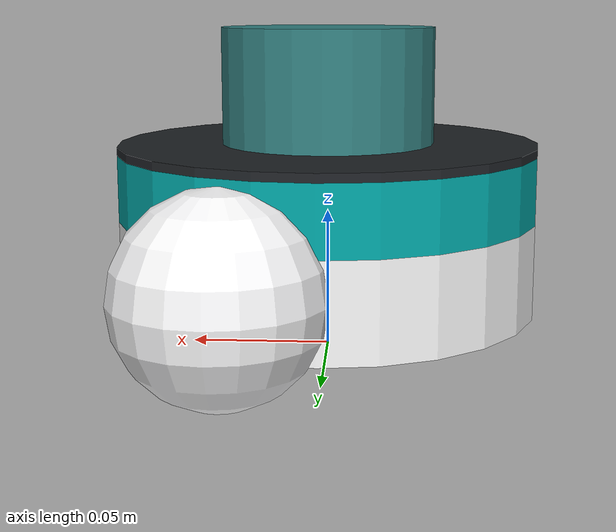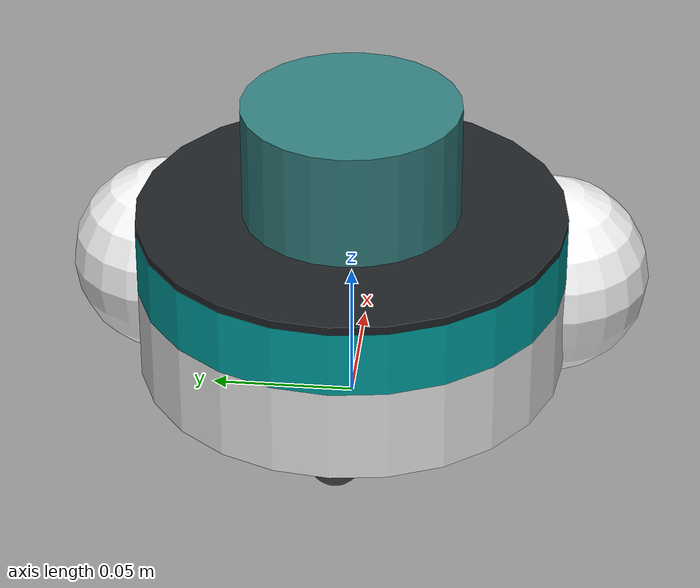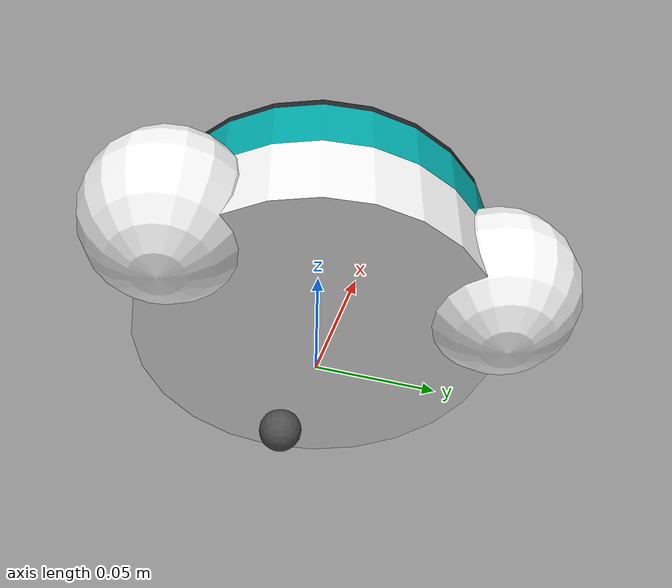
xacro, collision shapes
<?xml version="1.0" ?>
<robot name="gizmo" xmlns:xacro="http://www.ros.org/wiki/xacro">

    <xacro:include filename="$(find gizmo_description)/urdf/include/gizmo_mobile_base.xacro" />
    <xacro:include filename="$(find gizmo_description)/urdf/include/gizmo_mobile_base.gazebo.xacro" />

    <xacro:include filename="$(find gizmo_description)/urdf/include/sensors.xacro" />
    <xacro:include filename="$(find gizmo_description)/urdf/include/sensors.gazebo.xacro" />

</robot>

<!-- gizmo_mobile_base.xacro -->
<robot xmlns:xacro="http://www.ros.org/wiki/xacro">

    <xacro:include filename="$(find gizmo_description)/urdf/include/inertial_function_macros.xacro" />
    <xacro:include filename="$(find gizmo_description)/urdf/include/base_floor1.xacro" />
    <xacro:include filename="$(find gizmo_description)/urdf/include/base_floor2.xacro" />
    <xacro:include filename="$(find gizmo_description)/urdf/include/base_floor3.xacro" />
    <xacro:include filename="$(find gizmo_description)/urdf/include/caster_wheel.xacro" />
    <xacro:include filename="$(find gizmo_description)/urdf/include/wheel_left.xacro" />
    <xacro:include filename="$(find gizmo_description)/urdf/include/wheel_right.xacro" />

    <xacro:property name="base_footprint_base_floor1_o_xyz" value="0 0 0.01513116" />
    <xacro:property name="base_floor1_base_floor2_o_xyz" value="0 0 0.03350000" />
    <xacro:property name="base_floor2_base_floor3_o_xyz" value="0 0 0.02350000" />
    <xacro:property name="base_floor1_caster_wheel_o_xyz" value="-0.0556106 -0 0.0035" />
    <xacro:property name="base_floor1_wheel_left_o_xyz" value="0.03 0.0691386 0.01986" />
    <xacro:property name="base_floor1_wheel_right_o_xyz" value="0.03 -0.0691386 0.01986" />

    <!-- Link base_footprint -->
    <link name="base_footprint"/>

    <!-- Joint base_footprint_base_floor1 -->
    <joint name="base_footprint_joint" type="fixed">
        <origin xyz="${base_footprint_base_floor1_o_xyz}" rpy="0 0 0"/>
        <parent link="base_footprint"/>
        <child link="base_floor1"/>
    </joint>

    <!-- Joint base_floor1_base_floor2 -->
    <joint name="base_floor1_base_floor2_joint" type="fixed">
        <origin xyz="${base_floor1_base_floor2_o_xyz}" rpy="0 0 0"/>
        <parent link="base_floor1"/>
        <child link="base_floor2"/>
    </joint>

    <!-- Joint base_floor2_base_floor3 -->
    <joint name="base_floor2_base_floor3_joint" type="fixed">
        <origin xyz="${base_floor2_base_floor3_o_xyz}" rpy="0 0 0"/>
        <parent link="base_floor2"/>
        <child link="base_floor3"/>
    </joint>

    <!-- Joint base_floor1_caster_wheel -->
    <joint name="caster_wheel_joint" type="fixed">
        <origin xyz="${base_floor1_caster_wheel_o_xyz}" rpy="0 0 0"/>
        <parent link="base_floor1"/>
        <child link="caster_wheel"/>
    </joint>

    <!-- Joint base_floor1_wheel_left -->
    <joint name="left_wheel_joint" type="continuous">
        <origin xyz="${base_floor1_wheel_left_o_xyz}" rpy="0 0 0"/>
        <parent link="base_floor1"/>
        <child link="wheel_left"/>
        <axis xyz="0 1 0"/>
    </joint>

    <!-- Joint base_floor1_wheel_right -->
    <joint name="right_wheel_joint" type="continuous">
        <origin xyz="${base_floor1_wheel_right_o_xyz}" rpy="0 0 0"/>
        <parent link="base_floor1"/>
        <child link="wheel_right"/>
        <axis xyz="0 1 0"/>
    </joint>

</robot>

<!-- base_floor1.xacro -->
<robot xmlns:xacro="http://www.ros.org/wiki/xacro">

    <xacro:property name="base_floor1_m" value="0.256267" />
    <xacro:property name="base_floor1_r" value="0.07500000" />
    <xacro:property name="base_floor1_h" value="0.03350000" />
    <xacro:property name="base_floor1_o_xyz" value="0 0 ${base_floor1_h / 2}" />
    <xacro:property name="base_floor1_o_rpy" value="0 0 0" />

    <!-- Link base_floor1 -->
    <link name="base_floor1">
        <xacro:cylinder_inertia m="${base_floor1_m}" r="${base_floor1_r}" h="${base_floor1_h}" o_xyz="${base_floor1_o_xyz}" o_rpy="${base_floor1_o_rpy}"/>

        <collision>
        <origin xyz="${base_floor1_o_xyz}" rpy="${base_floor1_o_rpy}"/>
        <geometry>
            <cylinder radius="${base_floor1_r}" length="${base_floor1_h}" />
        </geometry>
        </collision>

        <!-- Part bn_8699_1727796_hexagon_socket_button_head_screw_m2_5x6 -->
        <visual>
        <origin xyz="0.0217 0.0627386 0.00961" rpy="3.14159 0 -1.5708"/>
        <geometry>
            <mesh filename="package://gizmo_description/meshes/bn_8699_1727796_hexagon_socket_button_head_screw_m2_5x6.stl"/>
        </geometry>
        <material name="bn_8699_1727796_hexagon_socket_button_head_screw_m2_5x6_material">
            <color rgba="0.941176 0.941176 0.941176 1"/>
        </material>
        </visual>

        <!-- Part standoff_spacer_m3_30mm -->
        <visual>
        <origin xyz="-0.0444488 -0.0371773 0.0035" rpy="0 -0 0"/>
        <geometry>
            <mesh filename="package://gizmo_description/meshes/standoff_spacer_m3_30mm.stl"/>
        </geometry>
        <material name="standoff_spacer_m3_30mm_material">
            <color rgba="0.917647 0.917647 0.917647 1"/>
        </material>
        </visual>

        <!-- Part bn_1593_1348663_hexagon_socket_button_head_screw_m3x6 -->
        <visual>
        <origin xyz="-0.0444488 -0.0371773 0.001" rpy="-0 -1.5708 0"/>
        <geometry>
            <mesh filename="package://gizmo_description/meshes/bn_1593_1348663_hexagon_socket_button_head_screw_m3x6.stl"/>
        </geometry>
        <material name="bn_1593_1348663_hexagon_socket_button_head_screw_m3x6_material">
            <color rgba="0.941176 0.941176 0.941176 1"/>
        </material>
        </visual>

        <!-- Part bn_8699_1727796_hexagon_socket_button_head_screw_m2_5x6_2 -->
        <visual>
        <origin xyz="0.001 -0.0627386 0.00961" rpy="1.5708 -0 1.5708"/>
        <geometry>
            <mesh filename="package://gizmo_description/meshes/bn_8699_1727796_hexagon_socket_button_head_screw_m2_5x6.stl"/>
        </geometry>
        <material name="bn_8699_1727796_hexagon_socket_button_head_screw_m2_5x6_2_material">
            <color rgba="0.941176 0.941176 0.941176 1"/>
        </material>
        </visual>

        <!-- Part standoff_spacer_m3_30mm_2 -->
        <visual>
        <origin xyz="-0.0444488 0.0371773 0.0035" rpy="0 -0 0"/>
        <geometry>
            <mesh filename="package://gizmo_description/meshes/standoff_spacer_m3_30mm.stl"/>
        </geometry>
        <material name="standoff_spacer_m3_30mm_2_material">
            <color rgba="0.917647 0.917647 0.917647 1"/>
        </material>
        </visual>

        <!-- Part bn_1593_1348663_hexagon_socket_button_head_screw_m3x6_2 -->
        <visual>
        <origin xyz="-0.00011 -0.0337386 0.001" rpy="-0 -1.5708 0"/>
        <geometry>
            <mesh filename="package://gizmo_description/meshes/bn_1593_1348663_hexagon_socket_button_head_screw_m3x6.stl"/>
        </geometry>
        <material name="bn_1593_1348663_hexagon_socket_button_head_screw_m3x6_2_material">
            <color rgba="0.941176 0.941176 0.941176 1"/>
        </material>
        </visual>

        <!-- Part bn_1593_1348663_hexagon_socket_button_head_screw_m3x6_3 -->
        <visual>
        <origin xyz="-0.00011 0.0337386 0.001" rpy="-0 -1.5708 0"/>
        <geometry>
            <mesh filename="package://gizmo_description/meshes/bn_1593_1348663_hexagon_socket_button_head_screw_m3x6.stl"/>
        </geometry>
        <material name="bn_1593_1348663_hexagon_socket_button_head_screw_m3x6_3_material">
            <color rgba="0.941176 0.941176 0.941176 1"/>
        </material>
        </visual>

        <!-- Part bn_8699_1727796_hexagon_socket_button_head_screw_m2_5x6_3 -->
        <visual>
        <origin xyz="0.0217 -0.0627386 0.00961" rpy="1.5708 -0 1.5708"/>
        <geometry>
            <mesh filename="package://gizmo_description/meshes/bn_8699_1727796_hexagon_socket_button_head_screw_m2_5x6.stl"/>
        </geometry>
        <material name="bn_8699_1727796_hexagon_socket_button_head_screw_m2_5x6_3_material">
            <color rgba="0.941176 0.941176 0.941176 1"/>
        </material>
        </visual>

        <!-- Part bn_1593_1348663_hexagon_socket_button_head_screw_m3x6_4 -->
        <visual>
        <origin xyz="0.03511 0.0557386 0.001" rpy="-0 -1.5708 0"/>
        <geometry>
            <mesh filename="package://gizmo_description/meshes/bn_1593_1348663_hexagon_socket_button_head_screw_m3x6.stl"/>
        </geometry>
        <material name="bn_1593_1348663_hexagon_socket_button_head_screw_m3x6_4_material">
            <color rgba="0.941176 0.941176 0.941176 1"/>
        </material>
        </visual>

        <!-- Part base_floor_1 -->
        <visual>
        <origin xyz="0 0 0" rpy="0 -0 0"/>
        <geometry>
            <mesh filename="package://gizmo_description/meshes/base_floor_1.stl"/>
        </geometry>
        <material name="base_floor_1_material">
            <color rgba="0.121569 0.133333 0.14902 1"/>
        </material>
        </visual>

        <!-- Part servo_bracket_r -->
        <visual>
        <origin xyz="0.0175 -0.0447386 0.0035" rpy="0 -0 0"/>
        <geometry>
            <mesh filename="package://gizmo_description/meshes/servo_bracket_r.stl"/>
        </geometry>
        <material name="servo_bracket_r_material">
            <color rgba="0.615686 0.811765 0.929412 1"/>
        </material>
        </visual>

        <!-- Part bn_1593_1348663_hexagon_socket_button_head_screw_m3x6_5 -->
        <visual>
        <origin xyz="0.03511 0.0337386 0.001" rpy="-0 -1.5708 0"/>
        <geometry>
            <mesh filename="package://gizmo_description/meshes/bn_1593_1348663_hexagon_socket_button_head_screw_m3x6.stl"/>
        </geometry>
        <material name="bn_1593_1348663_hexagon_socket_button_head_screw_m3x6_5_material">
            <color rgba="0.941176 0.941176 0.941176 1"/>
        </material>
        </visual>

        <!-- Part servo_bracket_l -->
        <visual>
        <origin xyz="0.0175 0.0447386 0.0035" rpy="0 -0 0"/>
        <geometry>
            <mesh filename="package://gizmo_description/meshes/servo_bracket_l.stl"/>
        </geometry>
        <material name="servo_bracket_l_material">
            <color rgba="0.615686 0.811765 0.929412 1"/>
        </material>
        </visual>

        <!-- Part bn_1593_1348663_hexagon_socket_button_head_screw_m3x6_6 -->
        <visual>
        <origin xyz="-0.0444488 0.0371773 0.001" rpy="-0 -1.5708 0"/>
        <geometry>
            <mesh filename="package://gizmo_description/meshes/bn_1593_1348663_hexagon_socket_button_head_screw_m3x6.stl"/>
        </geometry>
        <material name="bn_1593_1348663_hexagon_socket_button_head_screw_m3x6_6_material">
            <color rgba="0.941176 0.941176 0.941176 1"/>
        </material>
        </visual>

        <!-- Part st3215_hs_l -->
        <visual>
        <origin xyz="0.0175 0.0452886 0.00753371" rpy="0 -0 -0"/>
        <geometry>
            <mesh filename="package://gizmo_description/meshes/st3215_hs_l.stl"/>
        </geometry>
        <material name="st3215_hs_l_material">
            <color rgba="0.262745 0.282353 0.301961 1"/>
        </material>
        </visual>

        <!-- Part st3215_hs_r -->
        <visual>
        <origin xyz="0.0175 -0.0452886 0.00753324" rpy="0 -0 -0"/>
        <geometry>
            <mesh filename="package://gizmo_description/meshes/st3215_hs_r.stl"/>
        </geometry>
        <material name="st3215_hs_r_material">
            <color rgba="0.262745 0.282353 0.301961 1"/>
        </material>
        </visual>

        <!-- Part bn_8699_1727796_hexagon_socket_button_head_screw_m2_5x6_4 -->
        <visual>
        <origin xyz="0.001 0.0627386 0.03011" rpy="3.14159 0 -1.5708"/>
        <geometry>
            <mesh filename="package://gizmo_description/meshes/bn_8699_1727796_hexagon_socket_button_head_screw_m2_5x6.stl"/>
        </geometry>
        <material name="bn_8699_1727796_hexagon_socket_button_head_screw_m2_5x6_4_material">
            <color rgba="0.941176 0.941176 0.941176 1"/>
        </material>
        </visual>

        <!-- Part bn_8699_1727796_hexagon_socket_button_head_screw_m2_5x6_5 -->
        <visual>
        <origin xyz="0.001 0.0627386 0.00961" rpy="3.14159 0 -1.5708"/>
        <geometry>
            <mesh filename="package://gizmo_description/meshes/bn_8699_1727796_hexagon_socket_button_head_screw_m2_5x6.stl"/>
        </geometry>
        <material name="bn_8699_1727796_hexagon_socket_button_head_screw_m2_5x6_5_material">
            <color rgba="0.941176 0.941176 0.941176 1"/>
        </material>
        </visual>

        <!-- Part face_plate_bottom -->
        <visual>
        <origin xyz="0.048 -0 0.0035" rpy="0 -0 0"/>
        <geometry>
            <mesh filename="package://gizmo_description/meshes/face_plate_bottom.stl"/>
        </geometry>
        <material name="face_plate_bottom_material">
            <color rgba="0.231373 0.380392 0.705882 1"/>
        </material>
        </visual>

        <!-- Part bn_1593_1348663_hexagon_socket_button_head_screw_m3x6_7 -->
        <visual>
        <origin xyz="0.03511 -0.0337386 0.001" rpy="-0 -1.5708 0"/>
        <geometry>
            <mesh filename="package://gizmo_description/meshes/bn_1593_1348663_hexagon_socket_button_head_screw_m3x6.stl"/>
        </geometry>
        <material name="bn_1593_1348663_hexagon_socket_button_head_screw_m3x6_7_material">
            <color rgba="0.941176 0.941176 0.941176 1"/>
        </material>
        </visual>

        <!-- Part bn_8699_1727796_hexagon_socket_button_head_screw_m2_5x6_6 -->
        <visual>
        <origin xyz="0.0217 -0.0627386 0.03011" rpy="1.5708 -0 1.5708"/>
        <geometry>
            <mesh filename="package://gizmo_description/meshes/bn_8699_1727796_hexagon_socket_button_head_screw_m2_5x6.stl"/>
        </geometry>
        <material name="bn_8699_1727796_hexagon_socket_button_head_screw_m2_5x6_6_material">
            <color rgba="0.941176 0.941176 0.941176 1"/>
        </material>
        </visual>

        <!-- Part bn_1593_1348663_hexagon_socket_button_head_screw_m3x6_8 -->
        <visual>
        <origin xyz="0.03511 -0.0557386 0.001" rpy="-0 -1.5708 0"/>
        <geometry>
            <mesh filename="package://gizmo_description/meshes/bn_1593_1348663_hexagon_socket_button_head_screw_m3x6.stl"/>
        </geometry>
        <material name="bn_1593_1348663_hexagon_socket_button_head_screw_m3x6_8_material">
            <color rgba="0.941176 0.941176 0.941176 1"/>
        </material>
        </visual>

        <!-- Part bn_8699_1727796_hexagon_socket_button_head_screw_m2_5x6_7 -->
        <visual>
        <origin xyz="0.001 -0.0627386 0.03011" rpy="1.5708 -0 1.5708"/>
        <geometry>
            <mesh filename="package://gizmo_description/meshes/bn_8699_1727796_hexagon_socket_button_head_screw_m2_5x6.stl"/>
        </geometry>
        <material name="bn_8699_1727796_hexagon_socket_button_head_screw_m2_5x6_7_material">
            <color rgba="0.941176 0.941176 0.941176 1"/>
        </material>
        </visual>

        <!-- Part bn_1593_1348663_hexagon_socket_button_head_screw_m3x6_9 -->
        <visual>
        <origin xyz="-0.00011 0.0557386 0.001" rpy="-0 -1.5708 0"/>
        <geometry>
            <mesh filename="package://gizmo_description/meshes/bn_1593_1348663_hexagon_socket_button_head_screw_m3x6.stl"/>
        </geometry>
        <material name="bn_1593_1348663_hexagon_socket_button_head_screw_m3x6_9_material">
            <color rgba="0.941176 0.941176 0.941176 1"/>
        </material>
        </visual>

        <!-- Part bn_8699_1727796_hexagon_socket_button_head_screw_m2_5x6_8 -->
        <visual>
        <origin xyz="0.0217 0.0627386 0.03011" rpy="3.14159 0 -1.5708"/>
        <geometry>
            <mesh filename="package://gizmo_description/meshes/bn_8699_1727796_hexagon_socket_button_head_screw_m2_5x6.stl"/>
        </geometry>
        <material name="bn_8699_1727796_hexagon_socket_button_head_screw_m2_5x6_8_material">
            <color rgba="0.941176 0.941176 0.941176 1"/>
        </material>
        </visual>

        <!-- Part bn_1593_1348663_hexagon_socket_button_head_screw_m3x6_10 -->
        <visual>
        <origin xyz="-0.00011 -0.0557386 0.001" rpy="-0 -1.5708 0"/>
        <geometry>
            <mesh filename="package://gizmo_description/meshes/bn_1593_1348663_hexagon_socket_button_head_screw_m3x6.stl"/>
        </geometry>
        <material name="bn_1593_1348663_hexagon_socket_button_head_screw_m3x6_10_material">
            <color rgba="0.941176 0.941176 0.941176 1"/>
        </material>
        </visual>

    </link>

</robot>

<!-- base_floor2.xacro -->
<robot xmlns:xacro="http://www.ros.org/wiki/xacro">

    <xacro:property name="base_floor2_m" value="0.0997662" />
    <xacro:property name="base_floor2_r" value="0.07500000" />
    <xacro:property name="base_floor2_h" value="0.02350000" />
    <xacro:property name="base_floor2_o_xyz" value="0 0 ${base_floor2_h / 2}" />
    <xacro:property name="base_floor2_o_rpy" value="0 0 0" />

    <!-- Link base_floor2 -->
    <link name="base_floor2">

        <xacro:cylinder_inertia m="${base_floor2_m}" r="${base_floor2_r}" h="${base_floor2_h}" o_xyz="${base_floor2_o_xyz}" o_rpy="${base_floor2_o_rpy}"/>

        <collision>
        <origin xyz="${base_floor2_o_xyz}" rpy="${base_floor2_o_rpy}"/>
        <geometry>
            <cylinder radius="${base_floor2_r}" length="${base_floor2_h}" />
        </geometry>
        </collision>

        <!-- Part base_floor_2 -->
        <visual>
        <origin xyz="0 0 0" rpy="0 -0 0"/>
        <geometry>
            <mesh filename="package://gizmo_description/meshes/base_floor_2.stl"/>
        </geometry>
        <material name="base_floor_2_material">
            <color rgba="0 0.639216 0.639216 1"/>
        </material>
        </visual>

        <!-- Part bn_1593_1348663_hexagon_socket_button_head_screw_m3x6_11 -->
        <visual>
        <origin xyz="-0.0406106 -0.0507522 0.001" rpy="-0 -1.5708 0"/>
        <geometry>
            <mesh filename="package://gizmo_description/meshes/bn_1593_1348663_hexagon_socket_button_head_screw_m3x6.stl"/>
        </geometry>
        <material name="bn_1593_1348663_hexagon_socket_button_head_screw_m3x6_11_material">
            <color rgba="0.941176 0.941176 0.941176 1"/>
        </material>
        </visual>

        <!-- Part face_plate_top -->
        <visual>
        <origin xyz="0.048 0 0.0035" rpy="0 -0 0"/>
        <geometry>
            <mesh filename="package://gizmo_description/meshes/face_plate_top.stl"/>
        </geometry>
        <material name="face_plate_top_material">
            <color rgba="0.866667 0.321569 0.156863 1"/>
        </material>
        </visual>

        <!-- Part bn_1593_1348663_hexagon_socket_button_head_screw_m3x6_12 -->
        <visual>
        <origin xyz="-0.0406106 0.0507522 0.001" rpy="-0 -1.5708 0"/>
        <geometry>
            <mesh filename="package://gizmo_description/meshes/bn_1593_1348663_hexagon_socket_button_head_screw_m3x6.stl"/>
        </geometry>
        <material name="bn_1593_1348663_hexagon_socket_button_head_screw_m3x6_12_material">
            <color rgba="0.941176 0.941176 0.941176 1"/>
        </material>
        </visual>

        <!-- Part standoff_spacer_m3_20mm -->
        <visual>
        <origin xyz="-0.0406106 0.0507522 0.0035" rpy="0 -0 0"/>
        <geometry>
            <mesh filename="package://gizmo_description/meshes/standoff_spacer_m3_20mm.stl"/>
        </geometry>
        <material name="standoff_spacer_m3_20mm_material">
            <color rgba="0.917647 0.917647 0.917647 1"/>
        </material>
        </visual>

        <!-- Part standoff_spacer_m3_20mm_2 -->
        <visual>
        <origin xyz="-0.0406106 -0.0507522 0.0035" rpy="0 -0 0"/>
        <geometry>
            <mesh filename="package://gizmo_description/meshes/standoff_spacer_m3_20mm.stl"/>
        </geometry>
        <material name="standoff_spacer_m3_20mm_2_material">
            <color rgba="0.917647 0.917647 0.917647 1"/>
        </material>
        </visual>

        <!-- Part mcu_controller -->
        <visual>
        <origin xyz="0 0 0.0035" rpy="0 -0 0"/>
        <geometry>
            <mesh filename="package://gizmo_description/meshes/mcu_controller.stl"/>
        </geometry>
        <material name="mcu_controller_material">
            <color rgba="0.105882 0.333333 0 1"/>
        </material>
        </visual>

    </link>

</robot>

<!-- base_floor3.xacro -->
<robot xmlns:xacro="http://www.ros.org/wiki/xacro">

    <xacro:property name="base_floor3_m" value="0.0662765" />
    <xacro:property name="base_floor3_r" value="0.07500000" />
    <xacro:property name="base_floor3_h" value="0.00300000" />
    <xacro:property name="base_floor3_o_xyz" value="0 0 ${base_floor3_h / 2}" />
    <xacro:property name="base_floor3_o_rpy" value="0 0 0" />

    <!-- Link base_floor3 -->
    <link name="base_floor3">
        <xacro:cylinder_inertia m="${base_floor3_m}" r="${base_floor3_r}" h="${base_floor3_h}" o_xyz="${base_floor3_o_xyz}" o_rpy="${base_floor3_o_rpy}"/>

        <collision>
            <origin xyz="${base_floor3_o_xyz}" rpy="${base_floor3_o_rpy}"/>
            <geometry>
                <cylinder radius="${base_floor3_r}" length="${base_floor3_h}" />
            </geometry>
        </collision>

        <!-- Part base_floor_3 -->
        <visual>
            <origin xyz="0 0 0" rpy="0 -0 0"/>
            <geometry>
                <mesh filename="package://gizmo_description/meshes/base_floor_3.stl"/>
            </geometry>
            <material name="base_floor_3_material">
                <color rgba="0.121569 0.133333 0.14902 1"/>
            </material>
        </visual>

        <!-- Part bn_1593_1348663_hexagon_socket_button_head_screw_m3x6_13 -->
        <visual>
        <origin xyz="-0.0406106 -0.0507522 0.002" rpy="-0 1.5708 0"/>
        <geometry>
            <mesh filename="package://gizmo_description/meshes/bn_1593_1348663_hexagon_socket_button_head_screw_m3x6.stl"/>
        </geometry>
        <material name="bn_1593_1348663_hexagon_socket_button_head_screw_m3x6_13_material">
            <color rgba="0.941176 0.941176 0.941176 1"/>
        </material>
        </visual>

        <!-- Part bn_1593_1348663_hexagon_socket_button_head_screw_m3x6_14 -->
        <visual>
        <origin xyz="-0.0406106 0.0507522 0.002" rpy="-0 1.5708 0"/>
        <geometry>
            <mesh filename="package://gizmo_description/meshes/bn_1593_1348663_hexagon_socket_button_head_screw_m3x6.stl"/>
        </geometry>
        <material name="bn_1593_1348663_hexagon_socket_button_head_screw_m3x6_14_material">
            <color rgba="0.941176 0.941176 0.941176 1"/>
        </material>
        </visual>

    </link>
</robot>

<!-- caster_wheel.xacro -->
<robot xmlns:xacro="http://www.ros.org/wiki/xacro">

    <xacro:property name="caster_wheel_m" value="0.00740259" />
    <xacro:property name="caster_wheel_d" value="0.01863116" />
    <xacro:property name="caster_wheel_r" value="${caster_wheel_d / 2}" />
    <xacro:property name="caster_wheel_o_xyz" value="0 0 -${caster_wheel_r}" />
    <xacro:property name="caster_wheel_o_rpy" value="0 0 0" />

    <!-- Link caster_wheel -->
    <link name="caster_wheel">

        <xacro:sphere_inertia m="${caster_wheel_m}" r="${caster_wheel_r}" o_xyz="${caster_wheel_o_xyz}" o_rpy="${caster_wheel_o_rpy}"/>

        <collision>
            <origin xyz="${caster_wheel_o_xyz}" rpy="${caster_wheel_o_rpy}"/>
            <geometry>
                <sphere radius="${caster_wheel_r}" />
            </geometry>
        </collision>

        <!-- Part caster_ball -->
        <visual>
        <origin xyz="0 0 0" rpy="0 0 0"/>
        <geometry>
            <mesh filename="package://gizmo_description/meshes/caster_ball.stl"/>
        </geometry>
        <material name="caster_ball_material">
            <color rgba="0.301961 0.301961 0.301961 1"/>
        </material>
        </visual>

        <!-- Part caster_frame -->
        <visual>
        <origin xyz="0 0 0" rpy="0 0 0"/>
        <geometry>
            <mesh filename="package://gizmo_description/meshes/caster_frame.stl"/>
        </geometry>
        <material name="caster_frame_material">
            <color rgba="0.141176 0.694118 0.65098 1"/>
        </material>
        </visual>

    </link>

</robot>

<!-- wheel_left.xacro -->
<robot xmlns:xacro="http://www.ros.org/wiki/xacro">

    <xacro:property name="wheel_left_set_m" value="0.0258312" />
    <xacro:property name="wheel_left_set_o_xyz" value="0 -0.0025 0" />
    <xacro:property name="wheel_left_set_o_rpy" value="${pi/2} 0 0" />
    xacro:<xacro:property name="wheel_left_set_h" value="0.0130" />

    <xacro:property name="wheel_left_d" value="0.070" />
    <xacro:property name="wheel_left_r" value="${wheel_left_d / 2}" />
    <xacro:property name="wheel_left_o_xyz" value="0 0 0" />
    <xacro:property name="wheel_left_o_rpy" value="0 0 0" />

  <!-- Link wheel_left -->
  <link name="wheel_left">

    <xacro:cylinder_inertia m="${wheel_left_set_m}" r="${wheel_left_r}" h="${wheel_left_set_h}" o_xyz="${wheel_left_set_o_xyz}" o_rpy="${wheel_left_set_o_rpy}"/>

    <collision>
      <origin xyz="${wheel_left_o_xyz}" rpy="${wheel_left_o_rpy}"/>
      <geometry>
        <sphere radius="${wheel_left_r}"/>
      </geometry>
    </collision>

    <!-- Part 25t_servo_horn_l -->
    <visual>
      <origin xyz="0 -0.00699 0" rpy="0 0 0"/>
      <geometry>
        <mesh filename="package://gizmo_description/meshes/25t_servo_horn_l.stl"/>
      </geometry>
      <material name="25t_servo_horn_l_material">
        <color rgba="0.960784 0.960784 0.964706 1"/>
      </material>
    </visual>

    <!-- Part servo_horn_adapter_wheel70mm__l -->
    <visual>
      <origin xyz="0 -0.0045 0" rpy="0 0 0"/>
      <geometry>
        <mesh filename="package://gizmo_description/meshes/servo_horn_adapter_wheel70mm__l.stl"/>
      </geometry>
      <material name="servo_horn_adapter_wheel70mm__l_material">
        <color rgba="0.615686 0.811765 0.929412 1"/>
      </material>
    </visual>

    <!-- Part rim -->
    <visual>
      <origin xyz="0 0 0" rpy="0 0 0"/>
      <geometry>
        <mesh filename="package://gizmo_description/meshes/rim.stl"/>
      </geometry>
      <material name="rim_material">
        <color rgba="0.0941176 0.580392 0.545098 1"/>
      </material>
    </visual>

    <!-- Part tire -->
    <visual>
      <origin xyz="0 0 0" rpy="0 0 0"/>
      <geometry>
        <mesh filename="package://gizmo_description/meshes/tire.stl"/>
      </geometry>
      <material name="tire_material">
        <color rgba="0.0784314 0.0784314 0.0784314 1"/>
      </material>
    </visual>

    <!-- Part bn_1593_1348663_hexagon_socket_button_head_screw_m3x6_15 -->
    <visual>
      <origin xyz="-0.00824889 0.0015 -0.0047625" rpy="${pi/2} 0 -${pi/2}"/>
      <geometry>
        <mesh filename="package://gizmo_description/meshes/bn_1593_1348663_hexagon_socket_button_head_screw_m3x6.stl"/>
      </geometry>
      <material name="bn_1593_1348663_hexagon_socket_button_head_screw_m3x6_15_material">
        <color rgba="0.941176 0.941176 0.941176 1"/>
      </material>
    </visual>

    <!-- Part bn_1593_1348663_hexagon_socket_button_head_screw_m3x6_16 -->
    <visual>
      <origin xyz="0 0.0015 0.009525" rpy="${pi/2} 0 -${pi/2}"/>
      <geometry>
        <mesh filename="package://gizmo_description/meshes/bn_1593_1348663_hexagon_socket_button_head_screw_m3x6.stl"/>
      </geometry>
      <material name="bn_1593_1348663_hexagon_socket_button_head_screw_m3x6_16_material">
        <color rgba="0.941176 0.941176 0.941176 1"/>
      </material>
    </visual>

    <!-- Part bn_1593_1348663_hexagon_socket_button_head_screw_m3x6_17 -->
    <visual>
      <origin xyz="0.00824889 0.0015 -0.0047625" rpy="${pi/2} 0 -${pi/2}"/>
      <geometry>
        <mesh filename="package://gizmo_description/meshes/bn_1593_1348663_hexagon_socket_button_head_screw_m3x6.stl"/>
      </geometry>
      <material name="bn_1593_1348663_hexagon_socket_button_head_screw_m3x6_17_material">
        <color rgba="0.941176 0.941176 0.941176 1"/>
      </material>
    </visual>

    <!-- Part bn_1593_1348663_hexagon_socket_button_head_screw_m3x6_18 -->
    <visual>
      <origin xyz="0 0.0015 0" rpy="${pi} 0 -${pi/2}"/>
      <geometry>
        <mesh filename="package://gizmo_description/meshes/bn_1593_1348663_hexagon_socket_button_head_screw_m3x6.stl"/>
      </geometry>
      <material name="bn_1593_1348663_hexagon_socket_button_head_screw_m3x6_18_material">
        <color rgba="0.941176 0.941176 0.941176 1"/>
      </material>
    </visual>

  </link>

</robot>

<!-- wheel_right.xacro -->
<robot xmlns:xacro="http://www.ros.org/wiki/xacro">

    <xacro:property name="wheel_right_set_m" value="0.0258312" />
    <xacro:property name="wheel_right_set_o_xyz" value="0 0.0025 0" />
    <xacro:property name="wheel_right_set_o_rpy" value="${pi/2} 0 0" />
    xacro:<xacro:property name="wheel_right_set_h" value="0.0130" />

    <xacro:property name="wheel_right_d" value="0.070" />
    <xacro:property name="wheel_right_r" value="${wheel_right_d / 2}" />
    <xacro:property name="wheel_right_o_xyz" value="0 0 0" />
    <xacro:property name="wheel_right_o_rpy" value="0 0 0" />

<!-- Link wheel_right -->
  <link name="wheel_right">
    <xacro:cylinder_inertia m="${wheel_right_set_m}" r="${wheel_right_r}" h="${wheel_right_set_h}" o_xyz="${wheel_right_set_o_xyz}" o_rpy="${wheel_right_set_o_rpy}"/>

    <collision>
      <origin xyz="${wheel_right_o_xyz}" rpy="${wheel_right_o_rpy}"/>
      <geometry>
        <sphere radius="${wheel_right_r}"/>
      </geometry>
    </collision>

    <!-- Part 25t_servo_horn_r -->
    <visual>
      <origin xyz="0 0.00699 0" rpy="0 -0 0"/>
      <geometry>
        <mesh filename="package://gizmo_description/meshes/25t_servo_horn_r.stl"/>
      </geometry>
      <material name="25t_servo_horn_r_material">
        <color rgba="0.960784 0.960784 0.964706 1"/>
      </material>
    </visual>

    <!-- Part servo_horn_adapter_wheel70mm__r -->
    <visual>
      <origin xyz="0 0.0045 0" rpy="0 -0 0"/>
      <geometry>
        <mesh filename="package://gizmo_description/meshes/servo_horn_adapter_wheel70mm__r.stl"/>
      </geometry>
      <material name="servo_horn_adapter_wheel70mm__r_material">
        <color rgba="0.615686 0.811765 0.929412 1"/>
      </material>
    </visual>

    <!-- Part rim_2 -->
    <visual>
      <origin xyz="0 0 0" rpy="0 -0 0"/>
      <geometry>
        <mesh filename="package://gizmo_description/meshes/rim.stl"/>
      </geometry>
      <material name="rim_2_material">
        <color rgba="0.0941176 0.580392 0.545098 1"/>
      </material>
    </visual>

    <!-- Part tire_2 -->
    <visual>
      <origin xyz="0 0 0" rpy="0 -0 0"/>
      <geometry>
        <mesh filename="package://gizmo_description/meshes/tire.stl"/>
      </geometry>
      <material name="tire_2_material">
        <color rgba="0.0784314 0.0784314 0.0784314 1"/>
      </material>
    </visual>

    <!-- Part bn_1593_1348663_hexagon_socket_button_head_screw_m3x6_19 -->
    <visual>
      <origin xyz="-0.00824889 -0.0015 -0.0047625" rpy="-1.5708 -0 1.5708"/>
      <geometry>
        <mesh filename="package://gizmo_description/meshes/bn_1593_1348663_hexagon_socket_button_head_screw_m3x6.stl"/>
      </geometry>
      <material name="bn_1593_1348663_hexagon_socket_button_head_screw_m3x6_19_material">
        <color rgba="0.941176 0.941176 0.941176 1"/>
      </material>
    </visual>

    <!-- Part bn_1593_1348663_hexagon_socket_button_head_screw_m3x6_20 -->
    <visual>
      <origin xyz="0 -0.0015 0.009525" rpy="-1.5708 -0 1.5708"/>
      <geometry>
        <mesh filename="package://gizmo_description/meshes/bn_1593_1348663_hexagon_socket_button_head_screw_m3x6.stl"/>
      </geometry>
      <material name="bn_1593_1348663_hexagon_socket_button_head_screw_m3x6_20_material">
        <color rgba="0.941176 0.941176 0.941176 1"/>
      </material>
    </visual>

    <!-- Part bn_1593_1348663_hexagon_socket_button_head_screw_m3x6_21 -->
    <visual>
      <origin xyz="0 -0.0015 0" rpy="-1.5708 -0 1.5708"/>
      <geometry>
        <mesh filename="package://gizmo_description/meshes/bn_1593_1348663_hexagon_socket_button_head_screw_m3x6.stl"/>
      </geometry>
      <material name="bn_1593_1348663_hexagon_socket_button_head_screw_m3x6_21_material">
        <color rgba="0.941176 0.941176 0.941176 1"/>
      </material>
    </visual>

    <!-- Part bn_1593_1348663_hexagon_socket_button_head_screw_m3x6_22 -->
    <visual>
      <origin xyz="0.00824889 -0.0015 -0.0047625" rpy="-1.5708 -0 1.5708"/>
      <geometry>
        <mesh filename="package://gizmo_description/meshes/bn_1593_1348663_hexagon_socket_button_head_screw_m3x6.stl"/>
      </geometry>
      <material name="bn_1593_1348663_hexagon_socket_button_head_screw_m3x6_22_material">
        <color rgba="0.941176 0.941176 0.941176 1"/>
      </material>
    </visual>

  </link>

</robot>

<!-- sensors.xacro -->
<robot xmlns:xacro="http://www.ros.org/wiki/xacro">

    <xacro:include filename="$(find gizmo_description)/urdf/include/inertial_function_macros.xacro" />
    <xacro:include filename="$(find gizmo_description)/urdf/include/lidar.xacro" />

    <!-- lidar properties -->
    <xacro:property name="base_floor3_lidar_o_xyz" value="0 0 0.003" />
    <xacro:property name="base_floor3_lidar_o_rpy" value="0 0 0" />
    <xacro:property name="lidar_scan_frame_o_xyz" value="0 0 0.031" />
    <xacro:property name="lidar_scan_frame_o_rpy" value="0 0 0" />

    <!-- Joint lidar -->
    <joint name="lidar_joint" type="fixed">
        <origin xyz="${base_floor3_lidar_o_xyz}" rpy="${base_floor3_lidar_o_rpy}"/>
        <parent link="base_floor3"/>
        <child link="lidar"/>
    </joint>

    <joint name="scan_frame_joint" type="fixed">
        <origin xyz="${lidar_scan_frame_o_xyz}" rpy="${lidar_scan_frame_o_rpy}"/>
        <parent link="lidar"/>
        <child link="scan_frame"/>
    </joint>

</robot>

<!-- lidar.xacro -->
<robot xmlns:xacro="http://www.ros.org/wiki/xacro">

    <xacro:property name="lidar_m" value="0.19" />
    <xacro:property name="lidar_r" value="0.03800000" />
    <xacro:property name="lidar_length" value="0.04100000" />
    <xacro:property name="lidar_o_xyz" value="0 0 ${lidar_length/2}" />
    <xacro:property name="lidar_o_rpy" value="0 0 0" />

    <!-- Link lidar -->
    <link name="lidar">
        <xacro:cylinder_inertia m="${lidar_m}" r="${lidar_r}" h="${lidar_length}" o_xyz="${lidar_o_xyz}" o_rpy="${lidar_o_rpy}"/>

        <collision>
            <origin xyz="${lidar_o_xyz}" rpy="${lidar_o_rpy}"/>
            <geometry>
                <cylinder radius="${lidar_r}" length="${lidar_length}" />
            </geometry>
        </collision>

        <!-- Part lidar -->
        <visual>
            <origin xyz="0 0 0" rpy="0 0 0"/>
            <geometry>
                <mesh filename="package://gizmo_description/meshes/lidar.stl"/>
            </geometry>
            <material name="lidar_material">
                <color rgba="0.198039 0.498039 0.498039 1"/>
            </material>
        </visual>

    </link>

    <link name="scan_frame"/>

</robot>
